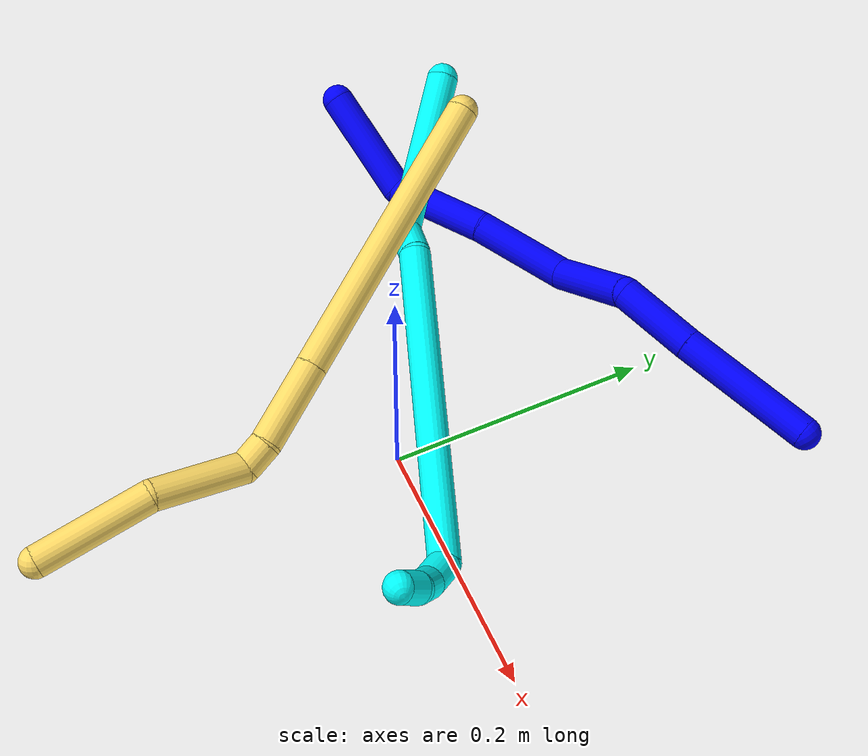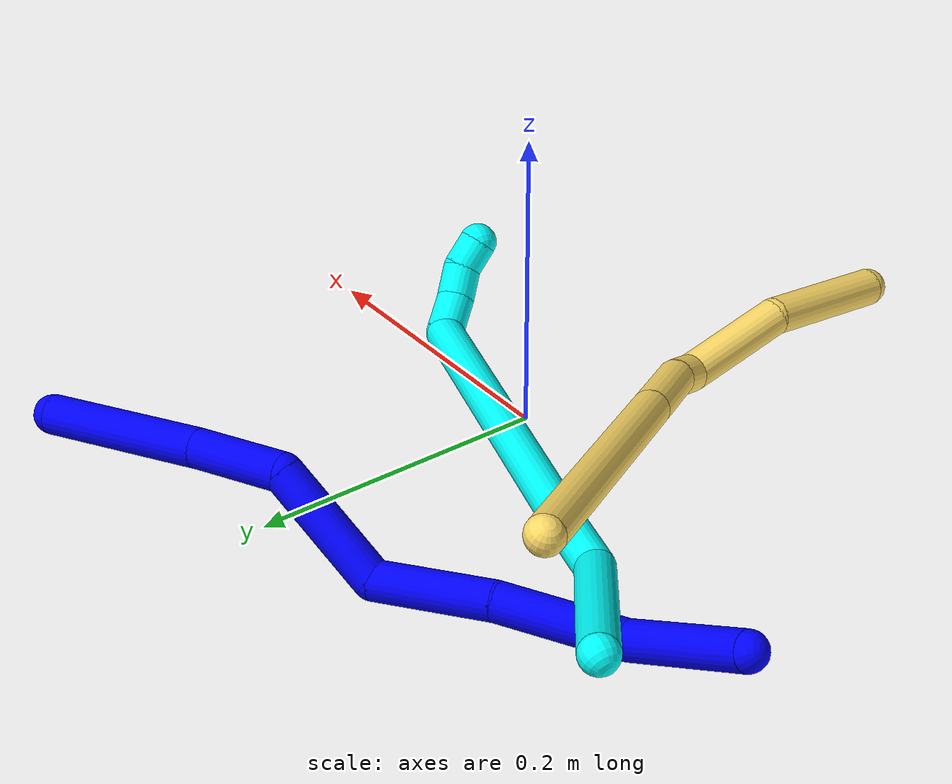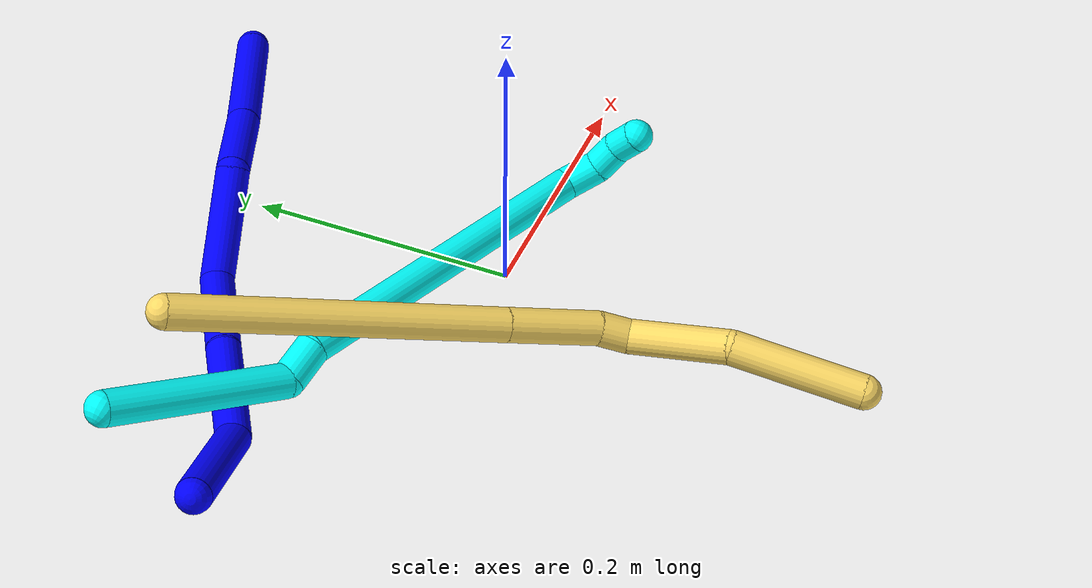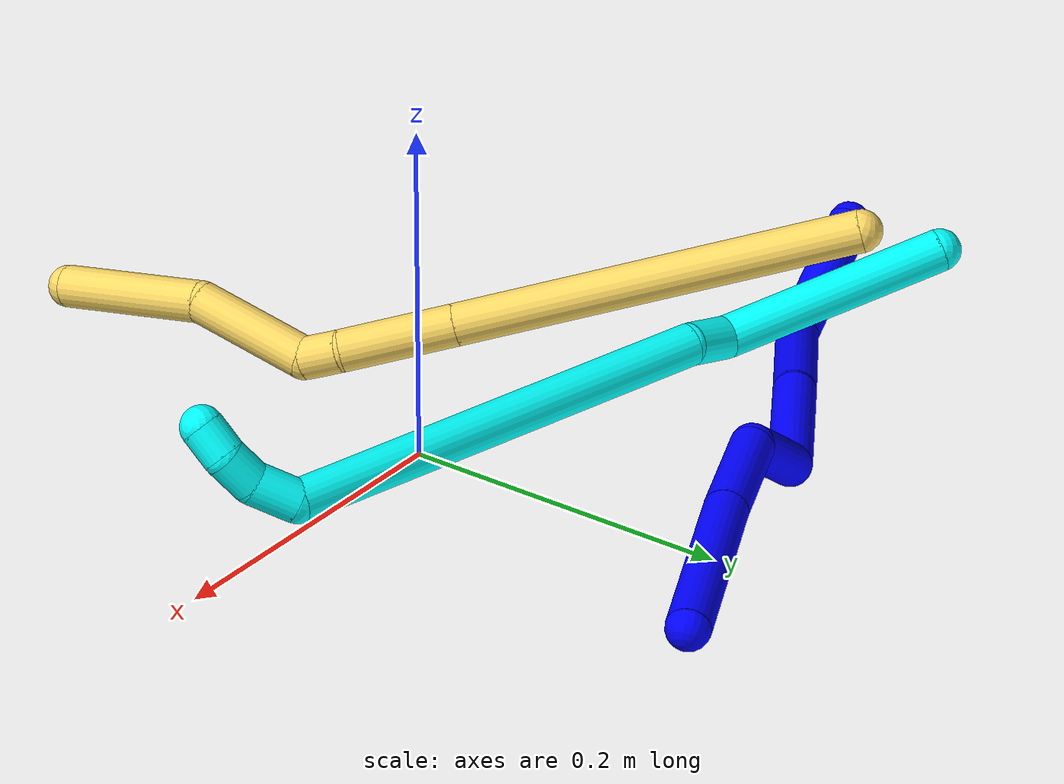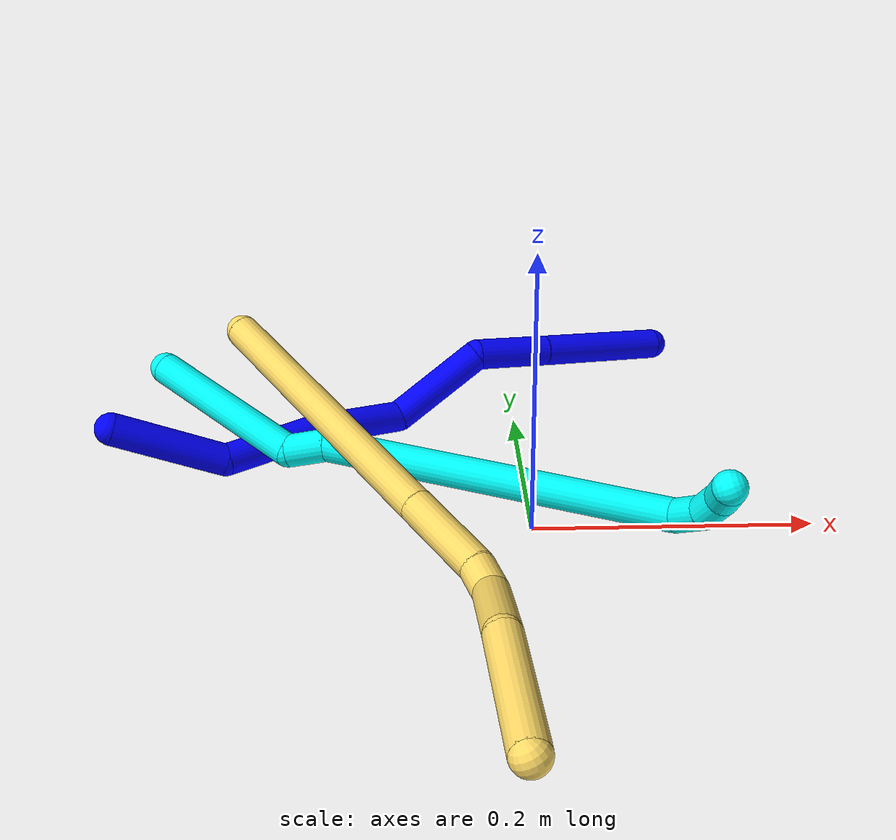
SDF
<sdf version="1.7">
 <world name="default">
  <model name="1">
   <static>0</static>
   <link name="1">
    <collision name="collision-cylinder-e_1_1_4">
     <pose>-0.023492 -0.013663 -0.047147 2.85952 -0.446362 -2.02357</pose>
     <geometry><cylinder><radius>0.0125</radius><length>0.108837</length></cylinder></geometry>
     <surface>
      <friction><ode><mu>1.16</mu><mu2>1.16</mu2><slip1>0</slip1><slip2>0</slip2></ode></friction>
      <contact><ode><kp>1e+06</kp><kd>1</kd><max_vel>0</max_vel><min_depth>0.001</min_depth></ode></contact>
     </surface>
    </collision>
    <visual name="visual-cylinder-e_1_1_4">
     <pose>-0.023492 -0.013663 -0.047147 2.85952 -0.446362 -2.02357</pose>
     <geometry><cylinder><radius>0.0125</radius><length>0.108837</length></cylinder></geometry>
     <material><ambient>0 0 1 1</ambient></material>
    </visual>
    <collision name="collision-cylinder-e_2_4_5">
     <pose>-0.059823 -0.03661 -0.121325 2.81079 -0.422219 -1.81807</pose>
     <geometry><cylinder><radius>0.0125</radius><length>0.062667</length></cylinder></geometry>
     <surface>
      <friction><ode><mu>1.16</mu><mu2>1.16</mu2><slip1>0</slip1><slip2>0</slip2></ode></friction>
      <contact><ode><kp>1e+06</kp><kd>1</kd><max_vel>0</max_vel><min_depth>0.001</min_depth></ode></contact>
     </surface>
    </collision>
    <visual name="visual-cylinder-e_2_4_5">
     <pose>-0.059823 -0.03661 -0.121325 2.81079 -0.422219 -1.81807</pose>
     <geometry><cylinder><radius>0.0125</radius><length>0.062667</length></cylinder></geometry>
     <material><ambient>0 0 1 1</ambient></material>
    </visual>
    <collision name="collision-cylinder-e_3_5_6">
     <pose>-0.100586 -0.072873 -0.162557 2.05525 -0.741507 -1.1441</pose>
     <geometry><cylinder><radius>0.0125</radius><length>0.082685</length></cylinder></geometry>
     <surface>
      <friction><ode><mu>1.16</mu><mu2>1.16</mu2><slip1>0</slip1><slip2>0</slip2></ode></friction>
      <contact><ode><kp>1e+06</kp><kd>1</kd><max_vel>0</max_vel><min_depth>0.001</min_depth></ode></contact>
     </surface>
    </collision>
    <visual name="visual-cylinder-e_3_5_6">
     <pose>-0.100586 -0.072873 -0.162557 2.05525 -0.741507 -1.1441</pose>
     <geometry><cylinder><radius>0.0125</radius><length>0.082685</length></cylinder></geometry>
     <material><ambient>0 0 1 1</ambient></material>
    </visual>
    <collision name="collision-cylinder-e_4_6_7">
     <pose>-0.148546 -0.105651 -0.208865 2.96294 -0.550718 -2.52764</pose>
     <geometry><cylinder><radius>0.0125</radius><length>0.07658</length></cylinder></geometry>
     <surface>
      <friction><ode><mu>1.16</mu><mu2>1.16</mu2><slip1>0</slip1><slip2>0</slip2></ode></friction>
      <contact><ode><kp>1e+06</kp><kd>1</kd><max_vel>0</max_vel><min_depth>0.001</min_depth></ode></contact>
     </surface>
    </collision>
    <visual name="visual-cylinder-e_4_6_7">
     <pose>-0.148546 -0.105651 -0.208865 2.96294 -0.550718 -2.52764</pose>
     <geometry><cylinder><radius>0.0125</radius><length>0.07658</length></cylinder></geometry>
     <material><ambient>0 0 1 1</ambient></material>
    </visual>
    <collision name="collision-cylinder-e_5_7_8">
     <pose>-0.193655 -0.120429 -0.271124 2.85211 -0.672905 -2.35187</pose>
     <geometry><cylinder><radius>0.0125</radius><length>0.080456</length></cylinder></geometry>
     <surface>
      <friction><ode><mu>1.16</mu><mu2>1.16</mu2><slip1>0</slip1><slip2>0</slip2></ode></friction>
      <contact><ode><kp>1e+06</kp><kd>1</kd><max_vel>0</max_vel><min_depth>0.001</min_depth></ode></contact>
     </surface>
    </collision>
    <visual name="visual-cylinder-e_5_7_8">
     <pose>-0.193655 -0.120429 -0.271124 2.85211 -0.672905 -2.35187</pose>
     <geometry><cylinder><radius>0.0125</radius><length>0.080456</length></cylinder></geometry>
     <material><ambient>0 0 1 1</ambient></material>
    </visual>
    <collision name="collision-cylinder-e_6_8_2">
     <pose>-0.22276 -0.138937 -0.34444 2.92435 -0.090961 -0.79074</pose>
     <geometry><cylinder><radius>0.0125</radius><length>0.088776</length></cylinder></geometry>
     <surface>
      <friction><ode><mu>1.16</mu><mu2>1.16</mu2><slip1>0</slip1><slip2>0</slip2></ode></friction>
      <contact><ode><kp>1e+06</kp><kd>1</kd><max_vel>0</max_vel><min_depth>0.001</min_depth></ode></contact>
     </surface>
    </collision>
    <visual name="visual-cylinder-e_6_8_2">
     <pose>-0.22276 -0.138937 -0.34444 2.92435 -0.090961 -0.79074</pose>
     <geometry><cylinder><radius>0.0125</radius><length>0.088776</length></cylinder></geometry>
     <material><ambient>0 0 1 1</ambient></material>
    </visual>
    <collision name="collision-sphere-2">
     <pose>-0.226792 -0.148464 -0.387606 0 -0 0</pose>
     <geometry><sphere><radius>0.0125</radius></sphere></geometry>
     <surface>
      <friction><ode><mu>1.16</mu><mu2>1.16</mu2><slip1>0</slip1><slip2>0</slip2></ode></friction>
      <contact><ode><kp>1e+06</kp><kd>1</kd><max_vel>0</max_vel><min_depth>0.001</min_depth></ode></contact>
     </surface>
    </collision>
    <visual name="visual-sphere-2">
     <pose>-0.226792 -0.148464 -0.387606 0 -0 0</pose>
     <geometry><sphere><radius>0.0125</radius></sphere></geometry>
     <material><ambient>0 0 1 1</ambient></material>
    </visual>
    <collision name="collision-sphere-4">
     <pose>-0.046983 -0.027327 -0.094293 0 -0 0</pose>
     <geometry><sphere><radius>0.0125</radius></sphere></geometry>
     <surface>
      <friction><ode><mu>1.16</mu><mu2>1.16</mu2><slip1>0</slip1><slip2>0</slip2></ode></friction>
      <contact><ode><kp>1e+06</kp><kd>1</kd><max_vel>0</max_vel><min_depth>0.001</min_depth></ode></contact>
     </surface>
    </collision>
    <visual name="visual-sphere-4">
     <pose>-0.046983 -0.027327 -0.094293 0 -0 0</pose>
     <geometry><sphere><radius>0.0125</radius></sphere></geometry>
     <material><ambient>0 0 1 1</ambient></material>
    </visual>
    <collision name="collision-sphere-1">
     <geometry><sphere><radius>0.0125</radius></sphere></geometry>
     <surface>
      <friction><ode><mu>1.16</mu><mu2>1.16</mu2><slip1>0</slip1><slip2>0</slip2></ode></friction>
      <contact><ode><kp>1e+06</kp><kd>1</kd><max_vel>0</max_vel><min_depth>0.001</min_depth></ode></contact>
     </surface>
    </collision>
    <visual name="visual-sphere-1">
     <geometry><sphere><radius>0.0125</radius></sphere></geometry>
     <material><ambient>0 0 1 1</ambient></material>
    </visual>
    <collision name="collision-sphere-8">
     <pose>-0.218728 -0.129409 -0.301274 0 -0 0</pose>
     <geometry><sphere><radius>0.0125</radius></sphere></geometry>
     <surface>
      <friction><ode><mu>1.16</mu><mu2>1.16</mu2><slip1>0</slip1><slip2>0</slip2></ode></friction>
      <contact><ode><kp>1e+06</kp><kd>1</kd><max_vel>0</max_vel><min_depth>0.001</min_depth></ode></contact>
     </surface>
    </collision>
    <visual name="visual-sphere-8">
     <pose>-0.218728 -0.129409 -0.301274 0 -0 0</pose>
     <geometry><sphere><radius>0.0125</radius></sphere></geometry>
     <material><ambient>0 0 1 1</ambient></material>
    </visual>
    <collision name="collision-sphere-5">
     <pose>-0.072663 -0.045893 -0.148357 0 -0 0</pose>
     <geometry><sphere><radius>0.0125</radius></sphere></geometry>
     <surface>
      <friction><ode><mu>1.16</mu><mu2>1.16</mu2><slip1>0</slip1><slip2>0</slip2></ode></friction>
      <contact><ode><kp>1e+06</kp><kd>1</kd><max_vel>0</max_vel><min_depth>0.001</min_depth></ode></contact>
     </surface>
    </collision>
    <visual name="visual-sphere-5">
     <pose>-0.072663 -0.045893 -0.148357 0 -0 0</pose>
     <geometry><sphere><radius>0.0125</radius></sphere></geometry>
     <material><ambient>0 0 1 1</ambient></material>
    </visual>
    <collision name="collision-sphere-6">
     <pose>-0.128508 -0.099853 -0.176756 0 -0 0</pose>
     <geometry><sphere><radius>0.0125</radius></sphere></geometry>
     <surface>
      <friction><ode><mu>1.16</mu><mu2>1.16</mu2><slip1>0</slip1><slip2>0</slip2></ode></friction>
      <contact><ode><kp>1e+06</kp><kd>1</kd><max_vel>0</max_vel><min_depth>0.001</min_depth></ode></contact>
     </surface>
    </collision>
    <visual name="visual-sphere-6">
     <pose>-0.128508 -0.099853 -0.176756 0 -0 0</pose>
     <geometry><sphere><radius>0.0125</radius></sphere></geometry>
     <material><ambient>0 0 1 1</ambient></material>
    </visual>
    <collision name="collision-sphere-7">
     <pose>-0.168583 -0.111449 -0.240975 0 -0 0</pose>
     <geometry><sphere><radius>0.0125</radius></sphere></geometry>
     <surface>
      <friction><ode><mu>1.16</mu><mu2>1.16</mu2><slip1>0</slip1><slip2>0</slip2></ode></friction>
      <contact><ode><kp>1e+06</kp><kd>1</kd><max_vel>0</max_vel><min_depth>0.001</min_depth></ode></contact>
     </surface>
    </collision>
    <visual name="visual-sphere-7">
     <pose>-0.168583 -0.111449 -0.240975 0 -0 0</pose>
     <geometry><sphere><radius>0.0125</radius></sphere></geometry>
     <material><ambient>0 0 1 1</ambient></material>
    </visual>
    <inertial>
     <pose>-0.122709 -0.079842 -0.189124 0 -0 0</pose>
     <mass>0.5</mass>
     <inertia>
      <ixx>-0.000296</ixx>
      <ixy>0</ixy>
      <ixz>0</ixz>
      <iyy>-0.00013</iyy>
      <iyz>0</iyz>
      <izz>0.000215</izz>
     </inertia>
    </inertial>
   </link>
   <pose>0.126479 0.270489 0.042701 2.39323 -0.667683 1.31028</pose>
  </model>
  <model name="3">
   <static>0</static>
   <link name="3">
    <collision name="collision-cylinder-e_1_1_4">
     <pose>0.048458 -0.018458 -0.042779 2.73425 0.805032 2.23828</pose>
     <geometry><cylinder><radius>0.0125</radius><length>0.134445</length></cylinder></geometry>
     <surface>
      <friction><ode><mu>1.16</mu><mu2>1.16</mu2><slip1>0</slip1><slip2>0</slip2></ode></friction>
      <contact><ode><kp>1e+06</kp><kd>1</kd><max_vel>0</max_vel><min_depth>0.001</min_depth></ode></contact>
     </surface>
    </collision>
    <visual name="visual-cylinder-e_1_1_4">
     <pose>0.048458 -0.018458 -0.042779 2.73425 0.805032 2.23828</pose>
     <geometry><cylinder><radius>0.0125</radius><length>0.134445</length></cylinder></geometry>
     <material><ambient>0.003922 1 0.996078 1</ambient></material>
    </visual>
    <collision name="collision-cylinder-e_2_4_5">
     <pose>0.098883 -0.039331 -0.100502 2.9814 0.129238 1.35697</pose>
     <geometry><cylinder><radius>0.0125</radius><length>0.030531</length></cylinder></geometry>
     <surface>
      <friction><ode><mu>1.16</mu><mu2>1.16</mu2><slip1>0</slip1><slip2>0</slip2></ode></friction>
      <contact><ode><kp>1e+06</kp><kd>1</kd><max_vel>0</max_vel><min_depth>0.001</min_depth></ode></contact>
     </surface>
    </collision>
    <visual name="visual-cylinder-e_2_4_5">
     <pose>0.098883 -0.039331 -0.100502 2.9814 0.129238 1.35697</pose>
     <geometry><cylinder><radius>0.0125</radius><length>0.030531</length></cylinder></geometry>
     <material><ambient>0.003922 1 0.996078 1</ambient></material>
    </visual>
    <collision name="collision-cylinder-e_3_5_6">
     <pose>0.156018 -0.080669 -0.22957 2.8129 0.429096 1.84047</pose>
     <geometry><cylinder><radius>0.0125</radius><length>0.265199</length></cylinder></geometry>
     <surface>
      <friction><ode><mu>1.16</mu><mu2>1.16</mu2><slip1>0</slip1><slip2>0</slip2></ode></friction>
      <contact><ode><kp>1e+06</kp><kd>1</kd><max_vel>0</max_vel><min_depth>0.001</min_depth></ode></contact>
     </surface>
    </collision>
    <visual name="visual-cylinder-e_3_5_6">
     <pose>0.156018 -0.080669 -0.22957 2.8129 0.429096 1.84047</pose>
     <geometry><cylinder><radius>0.0125</radius><length>0.265199</length></cylinder></geometry>
     <material><ambient>0.003922 1 0.996078 1</ambient></material>
    </visual>
    <collision name="collision-cylinder-e_4_6_7">
     <pose>0.217857 -0.113437 -0.354073 -2.60627 0.504969 -1.50975</pose>
     <geometry><cylinder><radius>0.0125</radius><length>0.027577</length></cylinder></geometry>
     <surface>
      <friction><ode><mu>1.16</mu><mu2>1.16</mu2><slip1>0</slip1><slip2>0</slip2></ode></friction>
      <contact><ode><kp>1e+06</kp><kd>1</kd><max_vel>0</max_vel><min_depth>0.001</min_depth></ode></contact>
     </surface>
    </collision>
    <visual name="visual-cylinder-e_4_6_7">
     <pose>0.217857 -0.113437 -0.354073 -2.60627 0.504969 -1.50975</pose>
     <geometry><cylinder><radius>0.0125</radius><length>0.027577</length></cylinder></geometry>
     <material><ambient>0.003922 1 0.996078 1</ambient></material>
    </visual>
    <collision name="collision-cylinder-e_5_7_8">
     <pose>0.22657 -0.09991 -0.372331 -2.38948 0.187066 -0.466502</pose>
     <geometry><cylinder><radius>0.0125</radius><length>0.021962</length></cylinder></geometry>
     <surface>
      <friction><ode><mu>1.16</mu><mu2>1.16</mu2><slip1>0</slip1><slip2>0</slip2></ode></friction>
      <contact><ode><kp>1e+06</kp><kd>1</kd><max_vel>0</max_vel><min_depth>0.001</min_depth></ode></contact>
     </surface>
    </collision>
    <visual name="visual-cylinder-e_5_7_8">
     <pose>0.22657 -0.09991 -0.372331 -2.38948 0.187066 -0.466502</pose>
     <geometry><cylinder><radius>0.0125</radius><length>0.021962</length></cylinder></geometry>
     <material><ambient>0.003922 1 0.996078 1</ambient></material>
    </visual>
    <collision name="collision-cylinder-e_6_8_2">
     <pose>0.231731 -0.083916 -0.384545 -2.03667 0.312605 -0.500517</pose>
     <geometry><cylinder><radius>0.0125</radius><length>0.020285</length></cylinder></geometry>
     <surface>
      <friction><ode><mu>1.16</mu><mu2>1.16</mu2><slip1>0</slip1><slip2>0</slip2></ode></friction>
      <contact><ode><kp>1e+06</kp><kd>1</kd><max_vel>0</max_vel><min_depth>0.001</min_depth></ode></contact>
     </surface>
    </collision>
    <visual name="visual-cylinder-e_6_8_2">
     <pose>0.231731 -0.083916 -0.384545 -2.03667 0.312605 -0.500517</pose>
     <geometry><cylinder><radius>0.0125</radius><length>0.020285</length></cylinder></geometry>
     <material><ambient>0.003922 1 0.996078 1</ambient></material>
    </visual>
    <collision name="collision-sphere-2">
     <pose>0.23485 -0.075294 -0.38888 0 -0 0</pose>
     <geometry><sphere><radius>0.0125</radius></sphere></geometry>
     <surface>
      <friction><ode><mu>1.16</mu><mu2>1.16</mu2><slip1>0</slip1><slip2>0</slip2></ode></friction>
      <contact><ode><kp>1e+06</kp><kd>1</kd><max_vel>0</max_vel><min_depth>0.001</min_depth></ode></contact>
     </surface>
    </collision>
    <visual name="visual-sphere-2">
     <pose>0.23485 -0.075294 -0.38888 0 -0 0</pose>
     <geometry><sphere><radius>0.0125</radius></sphere></geometry>
     <material><ambient>0.003922 1 0.996078 1</ambient></material>
    </visual>
    <collision name="collision-sphere-4">
     <pose>0.096915 -0.036916 -0.085558 0 -0 0</pose>
     <geometry><sphere><radius>0.0125</radius></sphere></geometry>
     <surface>
      <friction><ode><mu>1.16</mu><mu2>1.16</mu2><slip1>0</slip1><slip2>0</slip2></ode></friction>
      <contact><ode><kp>1e+06</kp><kd>1</kd><max_vel>0</max_vel><min_depth>0.001</min_depth></ode></contact>
     </surface>
    </collision>
    <visual name="visual-sphere-4">
     <pose>0.096915 -0.036916 -0.085558 0 -0 0</pose>
     <geometry><sphere><radius>0.0125</radius></sphere></geometry>
     <material><ambient>0.003922 1 0.996078 1</ambient></material>
    </visual>
    <collision name="collision-sphere-1">
     <geometry><sphere><radius>0.0125</radius></sphere></geometry>
     <surface>
      <friction><ode><mu>1.16</mu><mu2>1.16</mu2><slip1>0</slip1><slip2>0</slip2></ode></friction>
      <contact><ode><kp>1e+06</kp><kd>1</kd><max_vel>0</max_vel><min_depth>0.001</min_depth></ode></contact>
     </surface>
    </collision>
    <visual name="visual-sphere-1">
     <geometry><sphere><radius>0.0125</radius></sphere></geometry>
     <material><ambient>0.003922 1 0.996078 1</ambient></material>
    </visual>
    <collision name="collision-sphere-8">
     <pose>0.228612 -0.092539 -0.38021 0 -0 0</pose>
     <geometry><sphere><radius>0.0125</radius></sphere></geometry>
     <surface>
      <friction><ode><mu>1.16</mu><mu2>1.16</mu2><slip1>0</slip1><slip2>0</slip2></ode></friction>
      <contact><ode><kp>1e+06</kp><kd>1</kd><max_vel>0</max_vel><min_depth>0.001</min_depth></ode></contact>
     </surface>
    </collision>
    <visual name="visual-sphere-8">
     <pose>0.228612 -0.092539 -0.38021 0 -0 0</pose>
     <geometry><sphere><radius>0.0125</radius></sphere></geometry>
     <material><ambient>0.003922 1 0.996078 1</ambient></material>
    </visual>
    <collision name="collision-sphere-5">
     <pose>0.10085 -0.041746 -0.115446 0 -0 0</pose>
     <geometry><sphere><radius>0.0125</radius></sphere></geometry>
     <surface>
      <friction><ode><mu>1.16</mu><mu2>1.16</mu2><slip1>0</slip1><slip2>0</slip2></ode></friction>
      <contact><ode><kp>1e+06</kp><kd>1</kd><max_vel>0</max_vel><min_depth>0.001</min_depth></ode></contact>
     </surface>
    </collision>
    <visual name="visual-sphere-5">
     <pose>0.10085 -0.041746 -0.115446 0 -0 0</pose>
     <geometry><sphere><radius>0.0125</radius></sphere></geometry>
     <material><ambient>0.003922 1 0.996078 1</ambient></material>
    </visual>
    <collision name="collision-sphere-6">
     <pose>0.211186 -0.119593 -0.343693 0 -0 0</pose>
     <geometry><sphere><radius>0.0125</radius></sphere></geometry>
     <surface>
      <friction><ode><mu>1.16</mu><mu2>1.16</mu2><slip1>0</slip1><slip2>0</slip2></ode></friction>
      <contact><ode><kp>1e+06</kp><kd>1</kd><max_vel>0</max_vel><min_depth>0.001</min_depth></ode></contact>
     </surface>
    </collision>
    <visual name="visual-sphere-6">
     <pose>0.211186 -0.119593 -0.343693 0 -0 0</pose>
     <geometry><sphere><radius>0.0125</radius></sphere></geometry>
     <material><ambient>0.003922 1 0.996078 1</ambient></material>
    </visual>
    <collision name="collision-sphere-7">
     <pose>0.224528 -0.107281 -0.364452 0 -0 0</pose>
     <geometry><sphere><radius>0.0125</radius></sphere></geometry>
     <surface>
      <friction><ode><mu>1.16</mu><mu2>1.16</mu2><slip1>0</slip1><slip2>0</slip2></ode></friction>
      <contact><ode><kp>1e+06</kp><kd>1</kd><max_vel>0</max_vel><min_depth>0.001</min_depth></ode></contact>
     </surface>
    </collision>
    <visual name="visual-sphere-7">
     <pose>0.224528 -0.107281 -0.364452 0 -0 0</pose>
     <geometry><sphere><radius>0.0125</radius></sphere></geometry>
     <material><ambient>0.003922 1 0.996078 1</ambient></material>
    </visual>
    <inertial>
     <pose>0.133189 -0.064201 -0.190887 0 -0 0</pose>
     <mass>0.5</mass>
     <inertia>
      <ixx>0.001038</ixx>
      <ixy>0</ixy>
      <ixz>0</ixz>
      <iyy>0.002238</iyy>
      <iyz>0</iyz>
      <izz>-0.000321</izz>
     </inertia>
    </inertial>
   </link>
   <pose>-0.279703 0.165569 0.064031 2.04209 0.470087 -1.47</pose>
  </model>
  <model name="5">
   <static>0</static>
   <link name="5">
    <collision name="collision-cylinder-e_1_1_4">
     <pose>-0.054705 -0.083304 0.065179 0.906861 -0.47731 -0.236007</pose>
     <geometry><cylinder><radius>0.0125</radius><length>0.238164</length></cylinder></geometry>
     <surface>
      <friction><ode><mu>1.16</mu><mu2>1.16</mu2><slip1>0</slip1><slip2>0</slip2></ode></friction>
      <contact><ode><kp>1e+06</kp><kd>1</kd><max_vel>0</max_vel><min_depth>0.001</min_depth></ode></contact>
     </surface>
    </collision>
    <visual name="visual-cylinder-e_1_1_4">
     <pose>-0.054705 -0.083304 0.065179 0.906861 -0.47731 -0.236007</pose>
     <geometry><cylinder><radius>0.0125</radius><length>0.238164</length></cylinder></geometry>
     <material><ambient>1 0.858824 0.4 1</ambient></material>
    </visual>
    <collision name="collision-cylinder-e_2_4_5">
     <pose>-0.125136 -0.190427 0.148886 0.909725 -0.480389 -0.238431</pose>
     <geometry><cylinder><radius>0.0125</radius><length>0.068055</length></cylinder></geometry>
     <surface>
      <friction><ode><mu>1.16</mu><mu2>1.16</mu2><slip1>0</slip1><slip2>0</slip2></ode></friction>
      <contact><ode><kp>1e+06</kp><kd>1</kd><max_vel>0</max_vel><min_depth>0.001</min_depth></ode></contact>
     </surface>
    </collision>
    <visual name="visual-cylinder-e_2_4_5">
     <pose>-0.125136 -0.190427 0.148886 0.909725 -0.480389 -0.238431</pose>
     <geometry><cylinder><radius>0.0125</radius><length>0.068055</length></cylinder></geometry>
     <material><ambient>1 0.858824 0.4 1</ambient></material>
    </visual>
    <collision name="collision-cylinder-e_3_5_6">
     <pose>-0.143778 -0.223667 0.173673 0.984274 -0.252422 -0.135846</pose>
     <geometry><cylinder><radius>0.0125</radius><length>0.023363</length></cylinder></geometry>
     <surface>
      <friction><ode><mu>1.16</mu><mu2>1.16</mu2><slip1>0</slip1><slip2>0</slip2></ode></friction>
      <contact><ode><kp>1e+06</kp><kd>1</kd><max_vel>0</max_vel><min_depth>0.001</min_depth></ode></contact>
     </surface>
    </collision>
    <visual name="visual-cylinder-e_3_5_6">
     <pose>-0.143778 -0.223667 0.173673 0.984274 -0.252422 -0.135846</pose>
     <geometry><cylinder><radius>0.0125</radius><length>0.023363</length></cylinder></geometry>
     <material><ambient>1 0.858824 0.4 1</ambient></material>
    </visual>
    <collision name="collision-cylinder-e_4_6_7">
     <pose>-0.154201 -0.269744 0.177301 1.64249 -0.201447 -0.21632</pose>
     <geometry><cylinder><radius>0.0125</radius><length>0.075019</length></cylinder></geometry>
     <surface>
      <friction><ode><mu>1.16</mu><mu2>1.16</mu2><slip1>0</slip1><slip2>0</slip2></ode></friction>
      <contact><ode><kp>1e+06</kp><kd>1</kd><max_vel>0</max_vel><min_depth>0.001</min_depth></ode></contact>
     </surface>
    </collision>
    <visual name="visual-cylinder-e_4_6_7">
     <pose>-0.154201 -0.269744 0.177301 1.64249 -0.201447 -0.21632</pose>
     <geometry><cylinder><radius>0.0125</radius><length>0.075019</length></cylinder></geometry>
     <material><ambient>1 0.858824 0.4 1</ambient></material>
    </visual>
    <collision name="collision-cylinder-e_5_7_2">
     <pose>-0.166359 -0.352036 0.187745 1.29173 -0.097718 -0.073676</pose>
     <geometry><cylinder><radius>0.0125</radius><length>0.095399</length></cylinder></geometry>
     <surface>
      <friction><ode><mu>1.16</mu><mu2>1.16</mu2><slip1>0</slip1><slip2>0</slip2></ode></friction>
      <contact><ode><kp>1e+06</kp><kd>1</kd><max_vel>0</max_vel><min_depth>0.001</min_depth></ode></contact>
     </surface>
    </collision>
    <visual name="visual-cylinder-e_5_7_2">
     <pose>-0.166359 -0.352036 0.187745 1.29173 -0.097718 -0.073676</pose>
     <geometry><cylinder><radius>0.0125</radius><length>0.095399</length></cylinder></geometry>
     <material><ambient>1 0.858824 0.4 1</ambient></material>
    </visual>
    <collision name="collision-sphere-2">
     <pose>-0.171013 -0.397671 0.200822 0 -0 0</pose>
     <geometry><sphere><radius>0.0125</radius></sphere></geometry>
     <surface>
      <friction><ode><mu>1.16</mu><mu2>1.16</mu2><slip1>0</slip1><slip2>0</slip2></ode></friction>
      <contact><ode><kp>1e+06</kp><kd>1</kd><max_vel>0</max_vel><min_depth>0.001</min_depth></ode></contact>
     </surface>
    </collision>
    <visual name="visual-sphere-2">
     <pose>-0.171013 -0.397671 0.200822 0 -0 0</pose>
     <geometry><sphere><radius>0.0125</radius></sphere></geometry>
     <material><ambient>1 0.858824 0.4 1</ambient></material>
    </visual>
    <collision name="collision-sphere-7">
     <pose>-0.161706 -0.306401 0.174669 0 -0 0</pose>
     <geometry><sphere><radius>0.0125</radius></sphere></geometry>
     <surface>
      <friction><ode><mu>1.16</mu><mu2>1.16</mu2><slip1>0</slip1><slip2>0</slip2></ode></friction>
      <contact><ode><kp>1e+06</kp><kd>1</kd><max_vel>0</max_vel><min_depth>0.001</min_depth></ode></contact>
     </surface>
    </collision>
    <visual name="visual-sphere-7">
     <pose>-0.161706 -0.306401 0.174669 0 -0 0</pose>
     <geometry><sphere><radius>0.0125</radius></sphere></geometry>
     <material><ambient>1 0.858824 0.4 1</ambient></material>
    </visual>
    <collision name="collision-sphere-6">
     <pose>-0.146695 -0.233087 0.179934 0 -0 0</pose>
     <geometry><sphere><radius>0.0125</radius></sphere></geometry>
     <surface>
      <friction><ode><mu>1.16</mu><mu2>1.16</mu2><slip1>0</slip1><slip2>0</slip2></ode></friction>
      <contact><ode><kp>1e+06</kp><kd>1</kd><max_vel>0</max_vel><min_depth>0.001</min_depth></ode></contact>
     </surface>
    </collision>
    <visual name="visual-sphere-6">
     <pose>-0.146695 -0.233087 0.179934 0 -0 0</pose>
     <geometry><sphere><radius>0.0125</radius></sphere></geometry>
     <material><ambient>1 0.858824 0.4 1</ambient></material>
    </visual>
    <collision name="collision-sphere-5">
     <pose>-0.140861 -0.214246 0.167413 0 -0 0</pose>
     <geometry><sphere><radius>0.0125</radius></sphere></geometry>
     <surface>
      <friction><ode><mu>1.16</mu><mu2>1.16</mu2><slip1>0</slip1><slip2>0</slip2></ode></friction>
      <contact><ode><kp>1e+06</kp><kd>1</kd><max_vel>0</max_vel><min_depth>0.001</min_depth></ode></contact>
     </surface>
    </collision>
    <visual name="visual-sphere-5">
     <pose>-0.140861 -0.214246 0.167413 0 -0 0</pose>
     <geometry><sphere><radius>0.0125</radius></sphere></geometry>
     <material><ambient>1 0.858824 0.4 1</ambient></material>
    </visual>
    <collision name="collision-sphere-1">
     <geometry><sphere><radius>0.0125</radius></sphere></geometry>
     <surface>
      <friction><ode><mu>1.16</mu><mu2>1.16</mu2><slip1>0</slip1><slip2>0</slip2></ode></friction>
      <contact><ode><kp>1e+06</kp><kd>1</kd><max_vel>0</max_vel><min_depth>0.001</min_depth></ode></contact>
     </surface>
    </collision>
    <visual name="visual-sphere-1">
     <geometry><sphere><radius>0.0125</radius></sphere></geometry>
     <material><ambient>1 0.858824 0.4 1</ambient></material>
    </visual>
    <collision name="collision-sphere-4">
     <pose>-0.109411 -0.166608 0.130359 0 -0 0</pose>
     <geometry><sphere><radius>0.0125</radius></sphere></geometry>
     <surface>
      <friction><ode><mu>1.16</mu><mu2>1.16</mu2><slip1>0</slip1><slip2>0</slip2></ode></friction>
      <contact><ode><kp>1e+06</kp><kd>1</kd><max_vel>0</max_vel><min_depth>0.001</min_depth></ode></contact>
     </surface>
    </collision>
    <visual name="visual-sphere-4">
     <pose>-0.109411 -0.166608 0.130359 0 -0 0</pose>
     <geometry><sphere><radius>0.0125</radius></sphere></geometry>
     <material><ambient>1 0.858824 0.4 1</ambient></material>
    </visual>
    <inertial>
     <pose>-0.104685 -0.183689 0.12185 0 -0 0</pose>
     <mass>0.5</mass>
     <inertia>
      <ixx>0.00085</ixx>
      <ixy>0</ixy>
      <ixz>0</ixz>
      <iyy>0.000531</iyy>
      <iyz>0</iyz>
      <izz>0.001492</izz>
     </inertia>
    </inertial>
   </link>
   <pose>-0.215016 0.15241 0.098644 -3.08204 0.442708 3.0495</pose>
  </model>
 </world>
</sdf>
